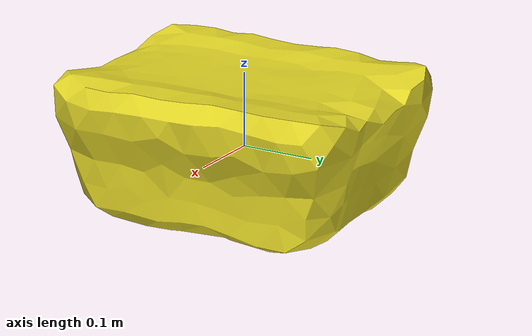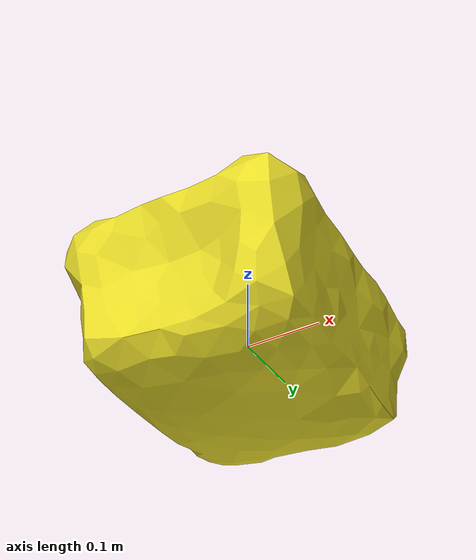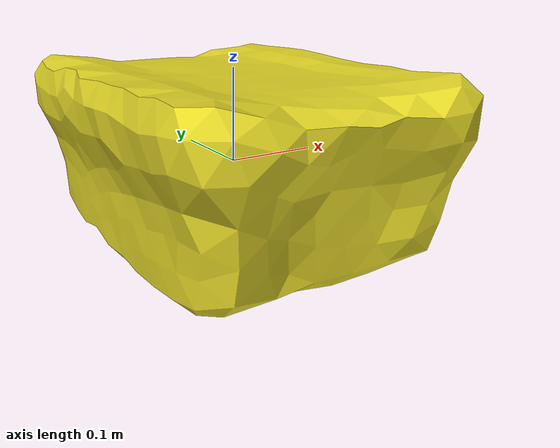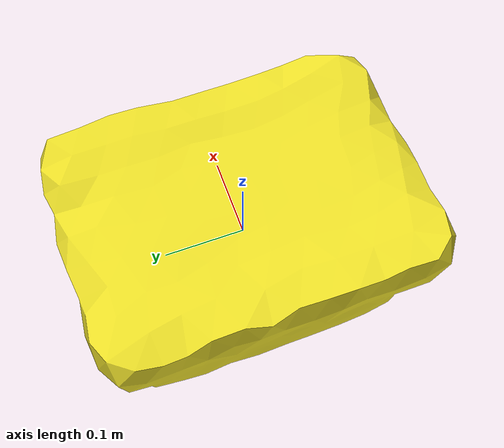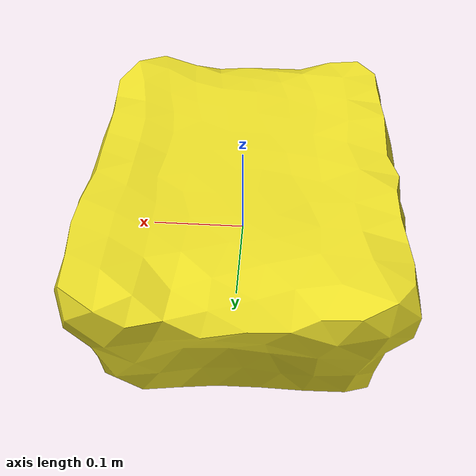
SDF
<?xml version="1.0" ?><sdf version="1.5"><model name="post-box">
<link name="link">
<pose>0 0 0 0 0 0</pose>
<inertial>
<pose>0 0 0 0 0 0</pose>
<mass>1.94</mass>
<inertia>
<ixx>0.0367963</ixx>
<ixy>0</ixy><iyy>0.024346</iyy>
<ixz>0</ixz><iyz>0</iyz><izz>0.0466511</izz>
</inertia>
</inertial>
<visual name="visual">
<pose>0 0 0 0 0 0</pose>
<geometry><mesh><uri>model://post-box-centered/meshes/post-box-centered.dae</uri></mesh></geometry>
<material><script><uri>file://media/materials/scripts/gazebo.material</uri><name>Gazebo/YellowGlow</name></script></material></visual>
<collision name="collision"><pose>0 0 0 0 0 0</pose><geometry><mesh><uri>model://post-box-centered/meshes/post-box-centered.dae</uri></mesh></geometry>
<surface><friction><ode><mu>1.000000</mu><mu2>1.000000</mu2></ode></friction></surface>
</collision></link></model></sdf>
